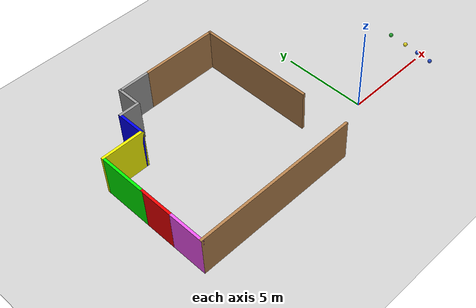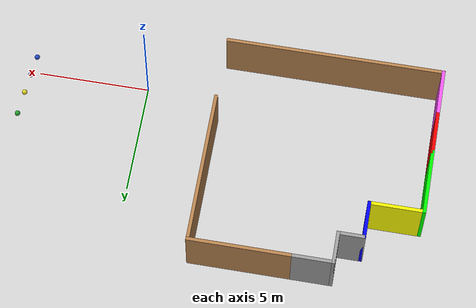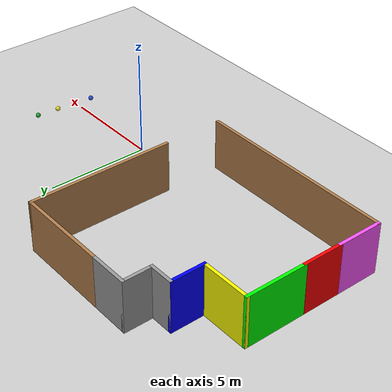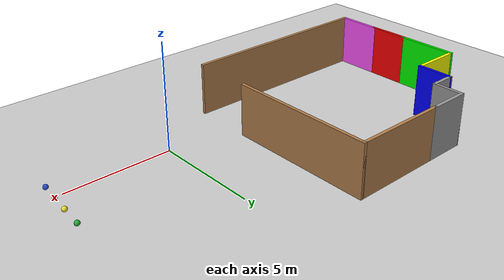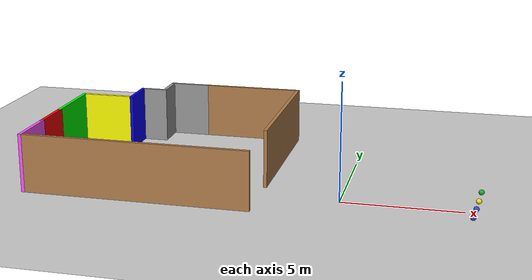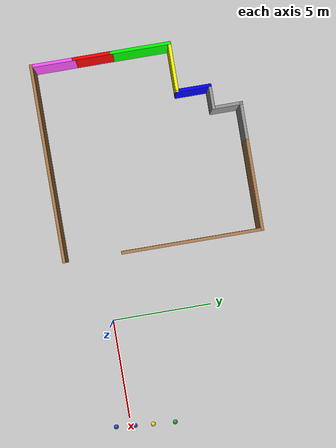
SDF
<sdf version="1.6">
 <world name="default">
  <light name="sun" type="directional">
   <pose>0 0 10 0 -0 0</pose>
   <diffuse>0.8 0.8 0.8 1</diffuse>
   <specular>0.2 0.2 0.2 1</specular>
   <attenuation>
    <range>1000</range>
    <constant>0.9</constant>
    <linear>0.01</linear>
    <quadratic>0.001</quadratic>
   </attenuation>
   <direction>-0.5 0.1 -0.9</direction>
   <spot><inner_angle>0</inner_angle><outer_angle>0</outer_angle><falloff>0</falloff></spot>
  </light>
  <model name="ground_plane">
   <static>1</static>
   <link name="link">
    <collision name="collision">
     <geometry><plane><normal>0 0 1</normal><size>100 100</size></plane></geometry>
     <surface>
      <contact><collide_bitmask>65535</collide_bitmask></contact>
      <friction><ode><mu>100</mu><mu2>50</mu2></ode></friction>
     </surface>
    </collision>
    <visual name="visual">
     <cast_shadows>0</cast_shadows>
     <geometry><plane><normal>0 0 1</normal><size>100 100</size></plane></geometry>
     <material>
      <script><uri>file://media/materials/scripts/gazebo.material</uri><name>Gazebo/Grey</name></script>
     </material>
    </visual>
   </link>
  </model>
  <gravity>0 0 -9.8</gravity>
  <magnetic_field>6e-06 2.3e-05 -4.2e-05</magnetic_field>
  <atmosphere type="adiabatic"/>
  <physics name="default_physics" default="0" type="ode">
   <max_step_size>0.001</max_step_size>
   <real_time_factor>1</real_time_factor>
   <real_time_update_rate>1000</real_time_update_rate>
  </physics>
  <scene><ambient>0.4 0.4 0.4 1</ambient><background>0.7 0.7 0.7 1</background><shadows>1</shadows></scene>
  <spherical_coordinates>
   <surface_model>EARTH_WGS84</surface_model>
   <latitude_deg>0</latitude_deg>
   <longitude_deg>0</longitude_deg>
   <elevation>0</elevation>
   <heading_deg>0</heading_deg>
  </spherical_coordinates>
  <model name="unit_sphere_blue">
   <link name="link">
    <inertial>
     <mass>1</mass>
     <inertia><ixx>0.1</ixx><ixy>0</ixy><ixz>0</ixz><iyy>0.1</iyy><iyz>0</iyz><izz>0.1</izz></inertia>
    </inertial>
    <visual name="visual">
     <geometry><sphere><radius>0.116892</radius></sphere></geometry>
     <material>
      <script><name>Gazebo/Blue</name><uri>file://media/materials/scripts/gazebo.material</uri></script>
      <shader type="pixel"><normal_map>__default__</normal_map></shader>
      <ambient>0 0 1 1</ambient>
      <diffuse>0 0 1 1</diffuse>
      <specular>0.1 0.1 0.1 1</specular>
      <emissive>0 0 0 1</emissive>
     </material>
    </visual>
    <collision name="collision">
     <geometry><sphere><radius>0.116892</radius></sphere></geometry>
     <surface>
      <friction>
       <ode><mu>1</mu><mu2>1</mu2><fdir1>0 0 0</fdir1><slip1>0</slip1><slip2>0</slip2></ode>
       <torsional>
        <coefficient>1</coefficient>
        <patch_radius>0</patch_radius>
        <surface_radius>0</surface_radius>
        <use_patch_radius>1</use_patch_radius>
        <ode><slip>0</slip></ode>
       </torsional>
      </friction>
      <bounce><restitution_coefficient>0</restitution_coefficient><threshold>1e+06</threshold></bounce>
      <contact>
       <collide_without_contact>0</collide_without_contact>
       <collide_without_contact_bitmask>1</collide_without_contact_bitmask>
       <collide_bitmask>1</collide_bitmask>
       <ode>
        <soft_cfm>0</soft_cfm>
        <soft_erp>0.2</soft_erp>
        <kp>1e+13</kp>
        <kd>1</kd>
        <max_vel>0.01</max_vel>
        <min_depth>0</min_depth>
       </ode>
       <bullet>
        <split_impulse>1</split_impulse>
        <split_impulse_penetration_threshold>-0.01</split_impulse_penetration_threshold>
        <soft_cfm>0</soft_cfm>
        <soft_erp>0.2</soft_erp>
        <kp>1e+13</kp>
        <kd>1</kd>
       </bullet>
      </contact>
     </surface>
    </collision>
   </link>
   <static>0</static>
   <pose>5.40866 0.188754 0.116892 0 -0 0</pose>
  </model>
  <model name="unit_sphere_blue_clone">
   <link name="link">
    <inertial>
     <mass>1</mass>
     <inertia><ixx>0.1</ixx><ixy>0</ixy><ixz>0</ixz><iyy>0.1</iyy><iyz>0</iyz><izz>0.1</izz></inertia>
    </inertial>
    <visual name="visual">
     <geometry><sphere><radius>0.116892</radius></sphere></geometry>
     <material>
      <script><name>Gazebo/Blue</name><uri>file://media/materials/scripts/gazebo.material</uri></script>
      <shader type="pixel"><normal_map>__default__</normal_map></shader>
      <ambient>1 0 0 1</ambient>
      <diffuse>1 0 0 1</diffuse>
      <specular>1 0.1 0 1</specular>
      <emissive>0 0 0 1</emissive>
     </material>
    </visual>
    <collision name="collision">
     <geometry><sphere><radius>0.116892</radius></sphere></geometry>
     <surface>
      <friction>
       <ode><mu>1</mu><mu2>1</mu2><fdir1>0 0 0</fdir1><slip1>0</slip1><slip2>0</slip2></ode>
       <torsional>
        <coefficient>1</coefficient>
        <patch_radius>0</patch_radius>
        <surface_radius>0</surface_radius>
        <use_patch_radius>1</use_patch_radius>
        <ode><slip>0</slip></ode>
       </torsional>
      </friction>
      <bounce><restitution_coefficient>0</restitution_coefficient><threshold>1e+06</threshold></bounce>
      <contact>
       <collide_without_contact>0</collide_without_contact>
       <collide_without_contact_bitmask>1</collide_without_contact_bitmask>
       <collide_bitmask>1</collide_bitmask>
       <ode>
        <soft_cfm>0</soft_cfm>
        <soft_erp>0.2</soft_erp>
        <kp>1e+13</kp>
        <kd>1</kd>
        <max_vel>0.01</max_vel>
        <min_depth>0</min_depth>
       </ode>
       <bullet>
        <split_impulse>1</split_impulse>
        <split_impulse_penetration_threshold>-0.01</split_impulse_penetration_threshold>
        <soft_cfm>0</soft_cfm>
        <soft_erp>0.2</soft_erp>
        <kp>1e+13</kp>
        <kd>1</kd>
       </bullet>
      </contact>
     </surface>
    </collision>
   </link>
   <static>0</static>
   <pose>5.31663 -0.752052 0.116892 0 -0 0</pose>
  </model>
  <model name="unit_sphere_yelllow">
   <link name="link">
    <inertial>
     <mass>1</mass>
     <inertia><ixx>0.1</ixx><ixy>0</ixy><ixz>0</ixz><iyy>0.1</iyy><iyz>0</iyz><izz>0.1</izz></inertia>
    </inertial>
    <visual name="visual">
     <geometry><sphere><radius>0.116892</radius></sphere></geometry>
     <material>
      <script><name>Gazebo/Yellow</name><uri>file://media/materials/scripts/gazebo.material</uri></script>
      <shader type="pixel"><normal_map>__default__</normal_map></shader>
      <ambient>1 1 0 1</ambient>
      <diffuse>1 1 0 1</diffuse>
      <specular>1 1 0 1</specular>
      <emissive>0 0 0 1</emissive>
     </material>
    </visual>
    <collision name="collision">
     <geometry><sphere><radius>0.116892</radius></sphere></geometry>
     <surface>
      <friction>
       <ode><mu>1</mu><mu2>1</mu2><fdir1>0 0 0</fdir1><slip1>0</slip1><slip2>0</slip2></ode>
       <torsional>
        <coefficient>1</coefficient>
        <patch_radius>0</patch_radius>
        <surface_radius>0</surface_radius>
        <use_patch_radius>1</use_patch_radius>
        <ode><slip>0</slip></ode>
       </torsional>
      </friction>
      <bounce><restitution_coefficient>0</restitution_coefficient><threshold>1e+06</threshold></bounce>
      <contact>
       <collide_without_contact>0</collide_without_contact>
       <collide_without_contact_bitmask>1</collide_without_contact_bitmask>
       <collide_bitmask>1</collide_bitmask>
       <ode>
        <soft_cfm>0</soft_cfm>
        <soft_erp>0.2</soft_erp>
        <kp>1e+13</kp>
        <kd>1</kd>
        <max_vel>0.01</max_vel>
        <min_depth>0</min_depth>
       </ode>
       <bullet>
        <split_impulse>1</split_impulse>
        <split_impulse_penetration_threshold>-0.01</split_impulse_penetration_threshold>
        <soft_cfm>0</soft_cfm>
        <soft_erp>0.2</soft_erp>
        <kp>1e+13</kp>
        <kd>1</kd>
       </bullet>
      </contact>
     </surface>
    </collision>
   </link>
   <static>0</static>
   <pose>5.48489 1.10907 0.116892 0 -0 0</pose>
  </model>
  <model name="unit_sphere_green">
   <link name="link">
    <inertial>
     <mass>1</mass>
     <inertia><ixx>0.1</ixx><ixy>0</ixy><ixz>0</ixz><iyy>0.1</iyy><iyz>0</iyz><izz>0.1</izz></inertia>
    </inertial>
    <visual name="visual">
     <geometry><sphere><radius>0.116892</radius></sphere></geometry>
     <material>
      <script><name>Gazebo/Green</name><uri>file://media/materials/scripts/gazebo.material</uri></script>
      <shader type="pixel"><normal_map>__default__</normal_map></shader>
      <ambient>0 1 0 1</ambient>
      <diffuse>0 1 0 1</diffuse>
      <specular>0 1 0 1</specular>
      <emissive>0 0 0 1</emissive>
     </material>
    </visual>
    <collision name="collision">
     <geometry><sphere><radius>0.116892</radius></sphere></geometry>
     <surface>
      <friction>
       <ode><mu>1</mu><mu2>1</mu2><fdir1>0 0 0</fdir1><slip1>0</slip1><slip2>0</slip2></ode>
       <torsional>
        <coefficient>1</coefficient>
        <patch_radius>0</patch_radius>
        <surface_radius>0</surface_radius>
        <use_patch_radius>1</use_patch_radius>
        <ode><slip>0</slip></ode>
       </torsional>
      </friction>
      <bounce><restitution_coefficient>0</restitution_coefficient><threshold>1e+06</threshold></bounce>
      <contact>
       <collide_without_contact>0</collide_without_contact>
       <collide_without_contact_bitmask>1</collide_without_contact_bitmask>
       <collide_bitmask>1</collide_bitmask>
       <ode>
        <soft_cfm>0</soft_cfm>
        <soft_erp>0.2</soft_erp>
        <kp>1e+13</kp>
        <kd>1</kd>
        <max_vel>0.01</max_vel>
        <min_depth>0</min_depth>
       </ode>
       <bullet>
        <split_impulse>1</split_impulse>
        <split_impulse_penetration_threshold>-0.01</split_impulse_penetration_threshold>
        <soft_cfm>0</soft_cfm>
        <soft_erp>0.2</soft_erp>
        <kp>1e+13</kp>
        <kd>1</kd>
       </bullet>
      </contact>
     </surface>
    </collision>
   </link>
   <static>0</static>
   <pose>5.5626 2.21477 0.116892 0 -0 0</pose>
  </model>
  <model name="Untitled">
   <pose>-6.5154 3.06466 0 0 -0 0</pose>
   <link name="Wall_10">
    <collision name="Wall_10_Collision">
     <geometry><box><size>4.5 0.15 2.5</size></box></geometry>
     <pose>0 0 1.25 0 -0 0</pose>
    </collision>
    <visual name="Wall_10_Visual">
     <pose>0 0 1.25 0 -0 0</pose>
     <geometry><box><size>4.5 0.15 2.5</size></box></geometry>
     <material>
      <script><uri>file://media/materials/scripts/gazebo.material</uri><name>Gazebo/Wood</name></script>
      <ambient>1 1 1 1</ambient>
     </material>
     <meta><layer>0</layer></meta>
    </visual>
    <pose>1.0346 4.875 0 0 -0 0</pose>
   </link>
   <link name="Wall_11">
    <collision name="Wall_11_Collision">
     <geometry><box><size>7 0.15 2.5</size></box></geometry>
     <pose>0 0 1.25 0 -0 0</pose>
    </collision>
    <visual name="Wall_11_Visual">
     <pose>0 0 1.25 0 -0 0</pose>
     <geometry><box><size>7 0.15 2.5</size></box></geometry>
     <material>
      <script><uri>file://media/materials/scripts/gazebo.material</uri><name>Gazebo/Wood</name></script>
      <ambient>1 1 1 1</ambient>
     </material>
     <meta><layer>0</layer></meta>
    </visual>
    <pose>3.2096 1.45 0 0 -0 -1.5708</pose>
   </link>
   <link name="Wall_13">
    <collision name="Wall_13_Collision">
     <geometry><box><size>2 0.15 2.5</size></box></geometry>
     <pose>0 0 1.25 0 -0 0</pose>
    </collision>
    <visual name="Wall_13_Visual">
     <pose>0 0 1.25 0 -0 0</pose>
     <geometry><box><size>2 0.15 2.5</size></box></geometry>
     <material>
      <script><uri>file://media/materials/scripts/gazebo.material</uri><name>Gazebo/Grey</name></script>
      <ambient>1 0 0 1</ambient>
     </material>
     <meta><layer>0</layer></meta>
    </visual>
    <pose>-6.4404 -1.85 0 0 -0 -1.5708</pose>
   </link>
   <link name="Wall_14">
    <collision name="Wall_14_Collision">
     <geometry><box><size>2.25 0.15 2.5</size></box></geometry>
     <pose>0 0 1.25 0 -0 0</pose>
    </collision>
    <visual name="Wall_14_Visual">
     <pose>0 0 1.25 0 -0 0</pose>
     <geometry><box><size>2.25 0.15 2.5</size></box></geometry>
     <material>
      <script><uri>file://media/materials/scripts/gazebo.material</uri><name>Gazebo/Grey</name></script>
      <ambient>1 0.333333 1 1</ambient>
     </material>
     <meta><layer>0</layer></meta>
    </visual>
    <pose>-6.4404 -3.825 0 0 -0 -1.5708</pose>
   </link>
   <link name="Wall_15">
    <collision name="Wall_15_Collision">
     <geometry><box><size>9.75 0.15 2.5</size></box></geometry>
     <pose>0 0 1.25 0 -0 0</pose>
    </collision>
    <visual name="Wall_15_Visual">
     <pose>0 0 1.25 0 -0 0</pose>
     <geometry><box><size>9.75 0.15 2.5</size></box></geometry>
     <material>
      <script><uri>file://media/materials/scripts/gazebo.material</uri><name>Gazebo/Wood</name></script>
      <ambient>1 1 1 1</ambient>
     </material>
     <meta><layer>0</layer></meta>
    </visual>
    <pose>-1.6404 -4.875 0 0 -0 0</pose>
   </link>
   <link name="Wall_3">
    <collision name="Wall_3_Collision">
     <geometry><box><size>3 0.15 2.5</size></box></geometry>
     <pose>0 0 1.25 0 -0 0</pose>
    </collision>
    <visual name="Wall_3_Visual">
     <pose>0 0 1.25 0 -0 0</pose>
     <geometry><box><size>3 0.15 2.5</size></box></geometry>
     <material>
      <script><uri>file://media/materials/scripts/gazebo.material</uri><name>Gazebo/Grey</name></script>
      <ambient>0 1 0 1</ambient>
     </material>
     <meta><layer>0</layer></meta>
    </visual>
    <pose>-6.4404 0.5 0 0 -0 -1.5708</pose>
   </link>
   <link name="Wall_5">
    <collision name="Wall_5_Collision">
     <geometry><box><size>2.5 0.15 2.5</size></box></geometry>
     <pose>0 0 1.25 0 -0 0</pose>
    </collision>
    <visual name="Wall_5_Visual">
     <pose>0 0 1.25 0 -0 0</pose>
     <geometry><box><size>2.5 0.15 2.5</size></box></geometry>
     <material>
      <script><uri>file://media/materials/scripts/gazebo.material</uri><name>Gazebo/Grey</name></script>
      <ambient>1 1 0 1</ambient>
     </material>
     <meta><layer>0</layer></meta>
    </visual>
    <pose>-5.2654 1.925 0 0 -0 0</pose>
   </link>
   <link name="Wall_6">
    <collision name="Wall_6_Collision">
     <geometry><box><size>1.75 0.15 2.5</size></box></geometry>
     <pose>0 0 1.25 0 -0 0</pose>
    </collision>
    <visual name="Wall_6_Visual">
     <pose>0 0 1.25 0 -0 0</pose>
     <geometry><box><size>1.75 0.15 2.5</size></box></geometry>
     <material>
      <script><uri>file://media/materials/scripts/gazebo.material</uri><name>Gazebo/Grey</name></script>
      <ambient>0 0 1 1</ambient>
     </material>
     <meta><layer>0</layer></meta>
    </visual>
    <pose>-4.0904 2.725 0 0 -0 1.5708</pose>
   </link>
   <link name="Wall_7">
    <collision name="Wall_7_Collision">
     <geometry><box><size>1.25 0.15 2.5</size></box></geometry>
     <pose>0 0 1.25 0 -0 0</pose>
    </collision>
    <visual name="Wall_7_Visual">
     <pose>0 0 1.25 0 -0 0</pose>
     <geometry><box><size>1.25 0.15 2.5</size></box></geometry>
     <material>
      <script><uri>file://media/materials/scripts/gazebo.material</uri><name>Gazebo/Grey</name></script>
      <ambient>0 0 0 1</ambient>
     </material>
     <meta><layer>0</layer></meta>
    </visual>
    <pose>-3.5404 3.525 0 0 -0 0</pose>
   </link>
   <link name="Wall_8">
    <collision name="Wall_8_Collision">
     <geometry><box><size>1.5 0.15 2.5</size></box></geometry>
     <pose>0 0 1.25 0 -0 0</pose>
    </collision>
    <visual name="Wall_8_Visual">
     <pose>0 0 1.25 0 -0 0</pose>
     <geometry><box><size>1.5 0.15 2.5</size></box></geometry>
     <material>
      <script><uri>file://media/materials/scripts/gazebo.material</uri><name>Gazebo/Grey</name></script>
      <ambient>1 1 1 1</ambient>
     </material>
     <meta><layer>0</layer></meta>
    </visual>
    <pose>-2.9904 4.2 0 0 -0 1.5708</pose>
   </link>
   <link name="Wall_9">
    <collision name="Wall_9_Collision">
     <geometry><box><size>2 0.15 2.5</size></box></geometry>
     <pose>0 0 1.25 0 -0 0</pose>
    </collision>
    <visual name="Wall_9_Visual">
     <pose>0 0 1.25 0 -0 0</pose>
     <geometry><box><size>2 0.15 2.5</size></box></geometry>
     <material>
      <script><uri>file://media/materials/scripts/gazebo.material</uri><name>Gazebo/Grey</name></script>
      <ambient>1 1 1 1</ambient>
     </material>
     <meta><layer>0</layer></meta>
    </visual>
    <pose>-2.0654 4.875 0 0 -0 0</pose>
   </link>
   <static>1</static>
  </model>
 </world>
</sdf>
